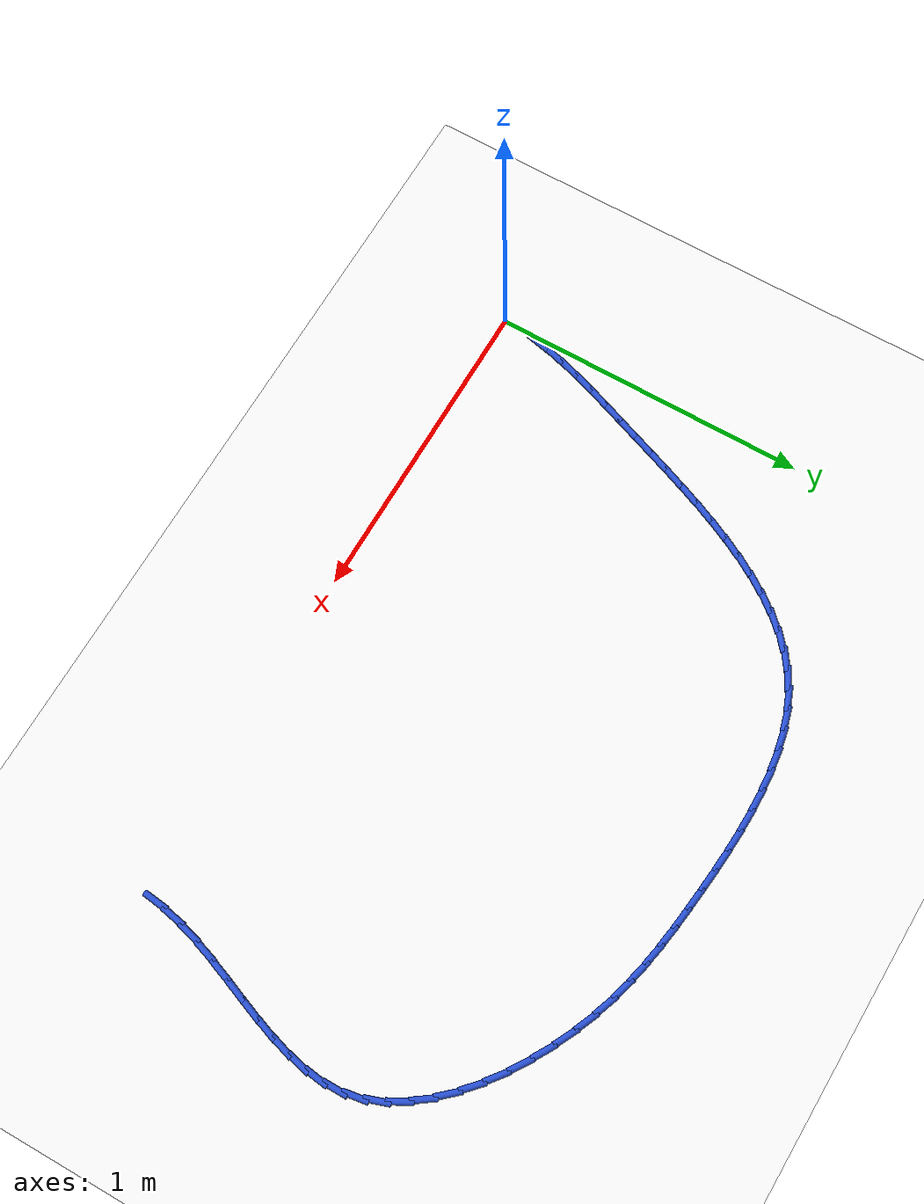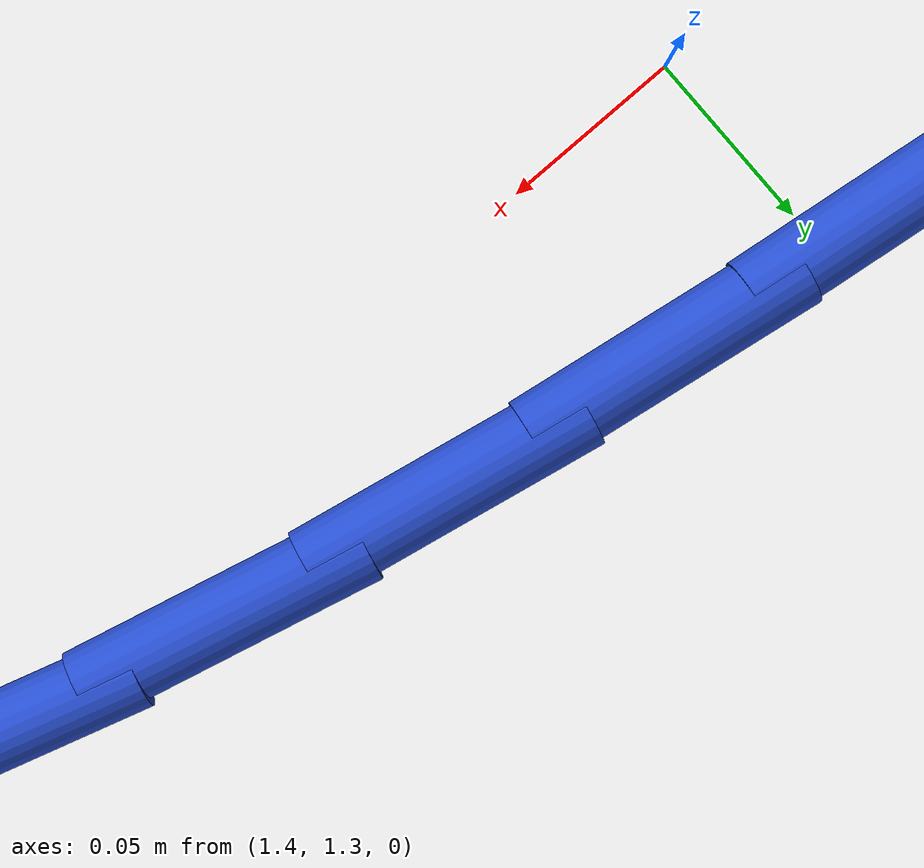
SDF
<sdf version="1.6">
 <world name="default">
  <model name="ground_plane">
   <static>1</static>
   <link name="link">
    <collision name="collision">
     <geometry><plane><normal>0 0 1</normal><size>100 100</size></plane></geometry>
     <surface><friction><ode><mu>100</mu><mu2>50</mu2></ode></friction></surface>
    </collision>
    <visual name="visual">
     <cast_shadows>0</cast_shadows>
     <geometry><plane><normal>0 0 1</normal><size>100 100</size></plane></geometry>
     <material>
      <script><uri>file://media/materials/scripts/gazebo.material</uri><name>Gazebo/WhiteGlow</name></script>
     </material>
    </visual>
   </link>
  </model>
  <model name="line">
   <link name="link_2">
    <pose>0.015124874615963263 0.12726597882911098 0.01 0 1.57 1.35212334152487</pose>
    <collision name="collision">
     <geometry><cylinder><radius>0.01</radius><length>0.08</length></cylinder></geometry>
    </collision>
    <visual name="visual">
     <material>
      <script><name>Gazebo/Blue</name><uri>file://media/materials/scripts/gazebo.material</uri></script>
     </material>
     <geometry><cylinder><radius>0.01</radius><length>0.08</length></cylinder></geometry>
    </visual>
   </link>
   <link name="link_3">
    <pose>0.02903649957802041 0.18986709704560153 0.01 0 1.57 1.3005191674126104</pose>
    <collision name="collision">
     <geometry><cylinder><radius>0.01</radius><length>0.08</length></cylinder></geometry>
    </collision>
    <visual name="visual">
     <material>
      <script><name>Gazebo/Blue</name><uri>file://media/materials/scripts/gazebo.material</uri></script>
     </material>
     <geometry><cylinder><radius>0.01</radius><length>0.08</length></cylinder></geometry>
    </visual>
   </link>
   <link name="link_4">
    <pose>0.04630110535305895 0.25218147275613845 0.01 0 1.57 1.2609099498490404</pose>
    <collision name="collision">
     <geometry><cylinder><radius>0.01</radius><length>0.08</length></cylinder></geometry>
    </collision>
    <visual name="visual">
     <material>
      <script><name>Gazebo/Blue</name><uri>file://media/materials/scripts/gazebo.material</uri></script>
     </material>
     <geometry><cylinder><radius>0.01</radius><length>0.08</length></cylinder></geometry>
    </visual>
   </link>
   <link name="link_5">
    <pose>0.06625883372377724 0.31450998468028923 0.01 0 1.57 1.2331866484383454</pose>
    <collision name="collision">
     <geometry><cylinder><radius>0.01</radius><length>0.08</length></cylinder></geometry>
    </collision>
    <visual name="visual">
     <material>
      <script><name>Gazebo/Blue</name><uri>file://media/materials/scripts/gazebo.material</uri></script>
     </material>
     <geometry><cylinder><radius>0.01</radius><length>0.08</length></cylinder></geometry>
    </visual>
   </link>
   <link name="link_6">
    <pose>0.08824982647287352 0.3771535115376211 0.01 0 1.57 1.2169947695209347</pose>
    <collision name="collision">
     <geometry><cylinder><radius>0.01</radius><length>0.08</length></cylinder></geometry>
    </collision>
    <visual name="visual">
     <material>
      <script><name>Gazebo/Blue</name><uri>file://media/materials/scripts/gazebo.material</uri></script>
     </material>
     <geometry><cylinder><radius>0.01</radius><length>0.08</length></cylinder></geometry>
    </visual>
   </link>
   <link name="link_7">
    <pose>0.1116142253830461 0.4404129320477016 0.01 0 1.57 1.2118624495936923</pose>
    <collision name="collision">
     <geometry><cylinder><radius>0.01</radius><length>0.08</length></cylinder></geometry>
    </collision>
    <visual name="visual">
     <material>
      <script><name>Gazebo/Blue</name><uri>file://media/materials/scripts/gazebo.material</uri></script>
     </material>
     <geometry><cylinder><radius>0.01</radius><length>0.08</length></cylinder></geometry>
    </visual>
   </link>
   <link name="link_8">
    <pose>0.1356922273314068 0.5045890769019296 0.01 0 1.57 1.21390317067661</pose>
    <collision name="collision">
     <geometry><cylinder><radius>0.01</radius><length>0.08</length></cylinder></geometry>
    </collision>
    <visual name="visual">
     <material>
      <script><name>Gazebo/Blue</name><uri>file://media/materials/scripts/gazebo.material</uri></script>
     </material>
     <geometry><cylinder><radius>0.01</radius><length>0.08</length></cylinder></geometry>
    </visual>
   </link>
   <link name="link_9">
    <pose>0.16001337527706083 0.569817715673678 0.01 0 1.57 1.2120164388921044</pose>
    <collision name="collision">
     <geometry><cylinder><radius>0.01</radius><length>0.08</length></cylinder></geometry>
    </collision>
    <visual name="visual">
     <material>
      <script><name>Gazebo/Blue</name><uri>file://media/materials/scripts/gazebo.material</uri></script>
     </material>
     <geometry><cylinder><radius>0.01</radius><length>0.08</length></cylinder></geometry>
    </visual>
   </link>
   <link name="link_10">
    <pose>0.1847200631193839 0.6357003694305189 0.01 0 1.57 1.2041223423482854</pose>
    <collision name="collision">
     <geometry><cylinder><radius>0.01</radius><length>0.08</length></cylinder></geometry>
    </collision>
    <visual name="visual">
     <material>
      <script><name>Gazebo/Blue</name><uri>file://media/materials/scripts/gazebo.material</uri></script>
     </material>
     <geometry><cylinder><radius>0.01</radius><length>0.08</length></cylinder></geometry>
    </visual>
   </link>
   <link name="link_11">
    <pose>0.2100784510165505 0.701730666872587 0.01 0 1.57 1.190189923793498</pose>
    <collision name="collision">
     <geometry><cylinder><radius>0.01</radius><length>0.08</length></cylinder></geometry>
    </collision>
    <visual name="visual">
     <material>
      <script><name>Gazebo/Blue</name><uri>file://media/materials/scripts/gazebo.material</uri></script>
     </material>
     <geometry><cylinder><radius>0.01</radius><length>0.08</length></cylinder></geometry>
    </visual>
   </link>
   <link name="link_12">
    <pose>0.2363546991267352 0.767402236700017 0.01 0 1.57 1.1700041935867342</pose>
    <collision name="collision">
     <geometry><cylinder><radius>0.01</radius><length>0.08</length></cylinder></geometry>
    </collision>
    <visual name="visual">
     <material>
      <script><name>Gazebo/Blue</name><uri>file://media/materials/scripts/gazebo.material</uri></script>
     </material>
     <geometry><cylinder><radius>0.01</radius><length>0.08</length></cylinder></geometry>
    </visual>
   </link>
   <link name="link_13">
    <pose>0.2638149676081124 0.8322087076129432 0.01 0 1.57 1.1431716851455187</pose>
    <collision name="collision">
     <geometry><cylinder><radius>0.01</radius><length>0.08</length></cylinder></geometry>
    </collision>
    <visual name="visual">
     <material>
      <script><name>Gazebo/Blue</name><uri>file://media/materials/scripts/gazebo.material</uri></script>
     </material>
     <geometry><cylinder><radius>0.01</radius><length>0.08</length></cylinder></geometry>
    </visual>
   </link>
   <link name="link_14">
    <pose>0.29272541661885665 0.8956437083115005 0.01 0 1.57 1.109123332111662</pose>
    <collision name="collision">
     <geometry><cylinder><radius>0.01</radius><length>0.08</length></cylinder></geometry>
    </collision>
    <visual name="visual">
     <material>
      <script><name>Gazebo/Blue</name><uri>file://media/materials/scripts/gazebo.material</uri></script>
     </material>
     <geometry><cylinder><radius>0.01</radius><length>0.08</length></cylinder></geometry>
    </visual>
   </link>
   <link name="link_15">
    <pose>0.32335220631714245 0.9572008674958233 0.01 0 1.57 1.0671209067730352</pose>
    <collision name="collision">
     <geometry><cylinder><radius>0.01</radius><length>0.08</length></cylinder></geometry>
    </collision>
    <visual name="visual">
     <material>
      <script><name>Gazebo/Blue</name><uri>file://media/materials/scripts/gazebo.material</uri></script>
     </material>
     <geometry><cylinder><radius>0.01</radius><length>0.08</length></cylinder></geometry>
    </visual>
   </link>
   <link name="link_16">
    <pose>0.35596149686114437 1.0163738138660467 0.01 0 1.57 1.0162770534701207</pose>
    <collision name="collision">
     <geometry><cylinder><radius>0.01</radius><length>0.08</length></cylinder></geometry>
    </collision>
    <visual name="visual">
     <material>
      <script><name>Gazebo/Blue</name><uri>file://media/materials/scripts/gazebo.material</uri></script>
     </material>
     <geometry><cylinder><radius>0.01</radius><length>0.08</length></cylinder></geometry>
    </visual>
   </link>
   <link name="link_17">
    <pose>0.39081944840903693 1.072656176122305 0.01 0 1.57 0.9556048104349663</pose>
    <collision name="collision">
     <geometry><cylinder><radius>0.01</radius><length>0.08</length></cylinder></geometry>
    </collision>
    <visual name="visual">
     <material>
      <script><name>Gazebo/Blue</name><uri>file://media/materials/scripts/gazebo.material</uri></script>
     </material>
     <geometry><cylinder><radius>0.01</radius><length>0.08</length></cylinder></geometry>
    </visual>
   </link>
   <link name="link_18">
    <pose>0.4281922211189946 1.125541582964733 0.01 0 1.57 0.8841197090836979</pose>
    <collision name="collision">
     <geometry><cylinder><radius>0.01</radius><length>0.08</length></cylinder></geometry>
    </collision>
    <visual name="visual">
     <material>
      <script><name>Gazebo/Blue</name><uri>file://media/materials/scripts/gazebo.material</uri></script>
     </material>
     <geometry><cylinder><radius>0.01</radius><length>0.08</length></cylinder></geometry>
    </visual>
   </link>
   <link name="link_19">
    <pose>0.46834597514919174 1.174523663093465 0.01 0 1.57 0.8010222239705981</pose>
    <collision name="collision">
     <geometry><cylinder><radius>0.01</radius><length>0.08</length></cylinder></geometry>
    </collision>
    <visual name="visual">
     <material>
      <script><name>Gazebo/Blue</name><uri>file://media/materials/scripts/gazebo.material</uri></script>
     </material>
     <geometry><cylinder><radius>0.01</radius><length>0.08</length></cylinder></geometry>
    </visual>
   </link>
   <link name="link_20">
    <pose>0.5115468706578031 1.2190960452086357 0.01 0 1.57 0.705980502461351</pose>
    <collision name="collision">
     <geometry><cylinder><radius>0.01</radius><length>0.08</length></cylinder></geometry>
    </collision>
    <visual name="visual">
     <material>
      <script><name>Gazebo/Blue</name><uri>file://media/materials/scripts/gazebo.material</uri></script>
     </material>
     <geometry><cylinder><radius>0.01</radius><length>0.08</length></cylinder></geometry>
    </visual>
   </link>
   <link name="link_21">
    <pose>0.5580610678030031 1.2587523580103803 0.01 0 1.57 0.5994961014630537</pose>
    <collision name="collision">
     <geometry><cylinder><radius>0.01</radius><length>0.08</length></cylinder></geometry>
    </collision>
    <visual name="visual">
     <material>
      <script><name>Gazebo/Blue</name><uri>file://media/materials/scripts/gazebo.material</uri></script>
     </material>
     <geometry><cylinder><radius>0.01</radius><length>0.08</length></cylinder></geometry>
    </visual>
   </link>
   <link name="link_22">
    <pose>0.6081547267429666 1.2929862301988333 0.01 0 1.57 0.48387752067793427</pose>
    <collision name="collision">
     <geometry><cylinder><radius>0.01</radius><length>0.08</length></cylinder></geometry>
    </collision>
    <visual name="visual">
     <material>
      <script><name>Gazebo/Blue</name><uri>file://media/materials/scripts/gazebo.material</uri></script>
     </material>
     <geometry><cylinder><radius>0.01</radius><length>0.08</length></cylinder></geometry>
    </visual>
   </link>
   <link name="link_23">
    <pose>0.6620708887715643 1.3213218316882342 0.01 0 1.57 0.37247261003637067</pose>
    <collision name="collision">
     <geometry><cylinder><radius>0.01</radius><length>0.08</length></cylinder></geometry>
    </collision>
    <visual name="visual">
     <material>
      <script><name>Gazebo/Blue</name><uri>file://media/materials/scripts/gazebo.material</uri></script>
     </material>
     <geometry><cylinder><radius>0.01</radius><length>0.08</length></cylinder></geometry>
    </visual>
   </link>
   <link name="link_24">
    <pose>0.7196480063954006 1.343817815082576 0.01 0 1.57 0.27552806119594847</pose>
    <collision name="collision">
     <geometry><cylinder><radius>0.01</radius><length>0.08</length></cylinder></geometry>
    </collision>
    <visual name="visual">
     <material>
      <script><name>Gazebo/Blue</name><uri>file://media/materials/scripts/gazebo.material</uri></script>
     </material>
     <geometry><cylinder><radius>0.01</radius><length>0.08</length></cylinder></geometry>
    </visual>
   </link>
   <link name="link_25">
    <pose>0.7803800538202094 1.3609879066176538 0.01 0 1.57 0.19281610082005254</pose>
    <collision name="collision">
     <geometry><cylinder><radius>0.01</radius><length>0.08</length></cylinder></geometry>
    </collision>
    <visual name="visual">
     <material>
      <script><name>Gazebo/Blue</name><uri>file://media/materials/scripts/gazebo.material</uri></script>
     </material>
     <geometry><cylinder><radius>0.01</radius><length>0.08</length></cylinder></geometry>
    </visual>
   </link>
   <link name="link_26">
    <pose>0.8437500060622933 1.37336036302674 0.01 0 1.57 0.12310279461666554</pose>
    <collision name="collision">
     <geometry><cylinder><radius>0.01</radius><length>0.08</length></cylinder></geometry>
    </collision>
    <visual name="visual">
     <material>
      <script><name>Gazebo/Blue</name><uri>file://media/materials/scripts/gazebo.material</uri></script>
     </material>
     <geometry><cylinder><radius>0.01</radius><length>0.08</length></cylinder></geometry>
    </visual>
   </link>
   <link name="link_27">
    <pose>0.909240838137956 1.3814634410431093 0.01 0 1.57 0.06492058829855396</pose>
    <collision name="collision">
     <geometry><cylinder><radius>0.01</radius><length>0.08</length></cylinder></geometry>
    </collision>
    <visual name="visual">
     <material>
      <script><name>Gazebo/Blue</name><uri>file://media/materials/scripts/gazebo.material</uri></script>
     </material>
     <geometry><cylinder><radius>0.01</radius><length>0.08</length></cylinder></geometry>
    </visual>
   </link>
   <link name="link_28">
    <pose>0.9763355250634989 1.3858253974000327 0.01 0 1.57 0.016851820086909206</pose>
    <collision name="collision">
     <geometry><cylinder><radius>0.01</radius><length>0.08</length></cylinder></geometry>
    </collision>
    <visual name="visual">
     <material>
      <script><name>Gazebo/Blue</name><uri>file://media/materials/scripts/gazebo.material</uri></script>
     </material>
     <geometry><cylinder><radius>0.01</radius><length>0.08</length></cylinder></geometry>
    </visual>
   </link>
   <link name="link_29">
    <pose>1.0445170418552256 1.3869744888307847 0.01 0 1.57 -0.022330647379553443</pose>
    <collision name="collision">
     <geometry><cylinder><radius>0.01</radius><length>0.08</length></cylinder></geometry>
    </collision>
    <visual name="visual">
     <material>
      <script><name>Gazebo/Blue</name><uri>file://media/materials/scripts/gazebo.material</uri></script>
     </material>
     <geometry><cylinder><radius>0.01</radius><length>0.08</length></cylinder></geometry>
    </visual>
   </link>
   <link name="link_30">
    <pose>1.1132683635294387 1.3854389720686378 0.01 0 1.57 -0.05360626914363247</pose>
    <collision name="collision">
     <geometry><cylinder><radius>0.01</radius><length>0.08</length></cylinder></geometry>
    </collision>
    <visual name="visual">
     <material>
      <script><name>Gazebo/Blue</name><uri>file://media/materials/scripts/gazebo.material</uri></script>
     </material>
     <geometry><cylinder><radius>0.01</radius><length>0.08</length></cylinder></geometry>
    </visual>
   </link>
   <link name="link_31">
    <pose>1.182072465102441 1.381747103846865 0.01 0 1.57 -0.07768900738043621</pose>
    <collision name="collision">
     <geometry><cylinder><radius>0.01</radius><length>0.08</length></cylinder></geometry>
    </collision>
    <visual name="visual">
     <material>
      <script><name>Gazebo/Blue</name><uri>file://media/materials/scripts/gazebo.material</uri></script>
     </material>
     <geometry><cylinder><radius>0.01</radius><length>0.08</length></cylinder></geometry>
    </visual>
   </link>
   <link name="link_32">
    <pose>1.2504123215905356 1.376427140898739 0.01 0 1.57 -0.09502081731744637</pose>
    <collision name="collision">
     <geometry><cylinder><radius>0.01</radius><length>0.08</length></cylinder></geometry>
    </collision>
    <visual name="visual">
     <material>
      <script><name>Gazebo/Blue</name><uri>file://media/materials/scripts/gazebo.material</uri></script>
     </material>
     <geometry><cylinder><radius>0.01</radius><length>0.08</length></cylinder></geometry>
    </visual>
   </link>
   <link name="link_33">
    <pose>1.3177709080100246 1.3700073399575332 0.01 0 1.57 -0.10704919971978034</pose>
    <collision name="collision">
     <geometry><cylinder><radius>0.01</radius><length>0.08</length></cylinder></geometry>
    </collision>
    <visual name="visual">
     <material>
      <script><name>Gazebo/Blue</name><uri>file://media/materials/scripts/gazebo.material</uri></script>
     </material>
     <geometry><cylinder><radius>0.01</radius><length>0.08</length></cylinder></geometry>
    </visual>
   </link>
   <link name="link_34">
    <pose>1.3837030098768872 1.3629222766838744 0.01 0 1.57 -0.12422450781899312</pose>
    <collision name="collision">
     <geometry><cylinder><radius>0.01</radius><length>0.08</length></cylinder></geometry>
    </collision>
    <visual name="visual">
     <material>
      <script><name>Gazebo/Blue</name><uri>file://media/materials/scripts/gazebo.material</uri></script>
     </material>
     <geometry><cylinder><radius>0.01</radius><length>0.08</length></cylinder></geometry>
    </visual>
   </link>
   <link name="link_35">
    <pose>1.4483426409005362 1.3548508890710231 0.01 0 1.57 -0.15164577110909783</pose>
    <collision name="collision">
     <geometry><cylinder><radius>0.01</radius><length>0.08</length></cylinder></geometry>
    </collision>
    <visual name="visual">
     <material>
      <script><name>Gazebo/Blue</name><uri>file://media/materials/scripts/gazebo.material</uri></script>
     </material>
     <geometry><cylinder><radius>0.01</radius><length>0.08</length></cylinder></geometry>
    </visual>
   </link>
   <link name="link_36">
    <pose>1.5121037004652866 1.345106987584076 0.01 0 1.57 -0.18895584179381783</pose>
    <collision name="collision">
     <geometry><cylinder><radius>0.01</radius><length>0.08</length></cylinder></geometry>
    </collision>
    <visual name="visual">
     <material>
      <script><name>Gazebo/Blue</name><uri>file://media/materials/scripts/gazebo.material</uri></script>
     </material>
     <geometry><cylinder><radius>0.01</radius><length>0.08</length></cylinder></geometry>
    </visual>
   </link>
   <link name="link_37">
    <pose>1.5754019057919997 1.3330020112121135 0.01 0 1.57 -0.2351615926998994</pose>
    <collision name="collision">
     <geometry><cylinder><radius>0.01</radius><length>0.08</length></cylinder></geometry>
    </collision>
    <visual name="visual">
     <material>
      <script><name>Gazebo/Blue</name><uri>file://media/materials/scripts/gazebo.material</uri></script>
     </material>
     <geometry><cylinder><radius>0.01</radius><length>0.08</length></cylinder></geometry>
    </visual>
   </link>
   <link name="link_38">
    <pose>1.638652974101537 1.3178473989442174 0.01 0 1.57 -0.28867007387549803</pose>
    <collision name="collision">
     <geometry><cylinder><radius>0.01</radius><length>0.08</length></cylinder></geometry>
    </collision>
    <visual name="visual">
     <material>
      <script><name>Gazebo/Blue</name><uri>file://media/materials/scripts/gazebo.material</uri></script>
     </material>
     <geometry><cylinder><radius>0.01</radius><length>0.08</length></cylinder></geometry>
    </visual>
   </link>
   <link name="link_39">
    <pose>1.7022726226147609 1.2989545897694685 0.01 0 1.57 -0.3472871755971398</pose>
    <collision name="collision">
     <geometry><cylinder><radius>0.01</radius><length>0.08</length></cylinder></geometry>
    </collision>
    <visual name="visual">
     <material>
      <script><name>Gazebo/Blue</name><uri>file://media/materials/scripts/gazebo.material</uri></script>
     </material>
     <geometry><cylinder><radius>0.01</radius><length>0.08</length></cylinder></geometry>
    </visual>
   </link>
   <link name="link_40">
    <pose>1.7666480872740946 1.2756534247872477 0.01 0 1.57 -0.40678809800112514</pose>
    <collision name="collision">
     <geometry><cylinder><radius>0.01</radius><length>0.08</length></cylinder></geometry>
    </collision>
    <visual name="visual">
     <material>
      <script><name>Gazebo/Blue</name><uri>file://media/materials/scripts/gazebo.material</uri></script>
     </material>
     <geometry><cylinder><radius>0.01</radius><length>0.08</length></cylinder></geometry>
    </visual>
   </link>
   <link name="link_41">
    <pose>1.8314553377972054 1.2477333031027271 0.01 0 1.57 -0.4659323039570916</pose>
    <collision name="collision">
     <geometry><cylinder><radius>0.01</radius><length>0.08</length></cylinder></geometry>
    </collision>
    <visual name="visual">
     <material>
      <script><name>Gazebo/Blue</name><uri>file://media/materials/scripts/gazebo.material</uri></script>
     </material>
     <geometry><cylinder><radius>0.01</radius><length>0.08</length></cylinder></geometry>
    </visual>
   </link>
   <link name="link_42">
    <pose>1.8956263812882685 1.215464307372663 0.01 0 1.57 -0.5269574659602752</pose>
    <collision name="collision">
     <geometry><cylinder><radius>0.01</radius><length>0.08</length></cylinder></geometry>
    </collision>
    <visual name="visual">
     <material>
      <script><name>Gazebo/Blue</name><uri>file://media/materials/scripts/gazebo.material</uri></script>
     </material>
     <geometry><cylinder><radius>0.01</radius><length>0.08</length></cylinder></geometry>
    </visual>
   </link>
   <link name="link_43">
    <pose>1.9580582001541973 1.1791391501488717 0.01 0 1.57 -0.5921990733330313</pose>
    <collision name="collision">
     <geometry><cylinder><radius>0.01</radius><length>0.08</length></cylinder></geometry>
    </collision>
    <visual name="visual">
     <material>
      <script><name>Gazebo/Blue</name><uri>file://media/materials/scripts/gazebo.material</uri></script>
     </material>
     <geometry><cylinder><radius>0.01</radius><length>0.08</length></cylinder></geometry>
    </visual>
   </link>
   <link name="link_44">
    <pose>2.017647776801906 1.1390505439831706 0.01 0 1.57 -0.6641756154894676</pose>
    <collision name="collision">
     <geometry><cylinder><radius>0.01</radius><length>0.08</length></cylinder></geometry>
    </collision>
    <visual name="visual">
     <material>
      <script><name>Gazebo/Blue</name><uri>file://media/materials/scripts/gazebo.material</uri></script>
     </material>
     <geometry><cylinder><radius>0.01</radius><length>0.08</length></cylinder></geometry>
    </visual>
   </link>
   <link name="link_45">
    <pose>2.0732920936383086 1.0954912014273774 0.01 0 1.57 -0.7457750408724259</pose>
    <collision name="collision">
     <geometry><cylinder><radius>0.01</radius><length>0.08</length></cylinder></geometry>
    </collision>
    <visual name="visual">
     <material>
      <script><name>Gazebo/Blue</name><uri>file://media/materials/scripts/gazebo.material</uri></script>
     </material>
     <geometry><cylinder><radius>0.01</radius><length>0.08</length></cylinder></geometry>
    </visual>
   </link>
   <link name="link_46">
    <pose>2.123888133070318 1.0487538350333088 0.01 0 1.57 -0.8403875848444728</pose>
    <collision name="collision">
     <geometry><cylinder><radius>0.01</radius><length>0.08</length></cylinder></geometry>
    </collision>
    <visual name="visual">
     <material>
      <script><name>Gazebo/Blue</name><uri>file://media/materials/scripts/gazebo.material</uri></script>
     </material>
     <geometry><cylinder><radius>0.01</radius><length>0.08</length></cylinder></geometry>
    </visual>
   </link>
   <link name="link_47">
    <pose>2.1683328775048487 0.9991311573527816 0.01 0 1.57 -0.9518948260493431</pose>
    <collision name="collision">
     <geometry><cylinder><radius>0.01</radius><length>0.08</length></cylinder></geometry>
    </collision>
    <visual name="visual">
     <material>
      <script><name>Gazebo/Blue</name><uri>file://media/materials/scripts/gazebo.material</uri></script>
     </material>
     <geometry><cylinder><radius>0.01</radius><length>0.08</length></cylinder></geometry>
    </visual>
   </link>
   <link name="link_48">
    <pose>2.205523309348814 0.9469158809376136 0.01 0 1.57 -1.0842964482931572</pose>
    <collision name="collision">
     <geometry><cylinder><radius>0.01</radius><length>0.08</length></cylinder></geometry>
    </collision>
    <visual name="visual">
     <material>
      <script><name>Gazebo/Blue</name><uri>file://media/materials/scripts/gazebo.material</uri></script>
     </material>
     <geometry><cylinder><radius>0.01</radius><length>0.08</length></cylinder></geometry>
    </visual>
   </link>
   <link name="link_49">
    <pose>2.234356411009128 0.8924007183396221 0.01 0 1.57 -1.2405992313072076</pose>
    <collision name="collision">
     <geometry><cylinder><radius>0.01</radius><length>0.08</length></cylinder></geometry>
    </collision>
    <visual name="visual">
     <material>
      <script><name>Gazebo/Blue</name><uri>file://media/materials/scripts/gazebo.material</uri></script>
     </material>
     <geometry><cylinder><radius>0.01</radius><length>0.08</length></cylinder></geometry>
    </visual>
   </link>
   <link name="link_50">
    <pose>2.2537291648927043 0.8358783821106235 0.01 0 1.57 -1.4166203122000576</pose>
    <collision name="collision">
     <geometry><cylinder><radius>0.01</radius><length>0.08</length></cylinder></geometry>
    </collision>
    <visual name="visual">
     <material>
      <script><name>Gazebo/Blue</name><uri>file://media/materials/scripts/gazebo.material</uri></script>
     </material>
     <geometry><cylinder><radius>0.01</radius><length>0.08</length></cylinder></geometry>
    </visual>
   </link>
   <link name="link_51">
    <pose>2.262781372481759 0.7776308699958642 0.01 0 1.57 1.5631838817920103</pose>
    <collision name="collision">
     <geometry><cylinder><radius>0.01</radius><length>0.08</length></cylinder></geometry>
    </collision>
    <visual name="visual">
     <material>
      <script><name>Gazebo/Blue</name><uri>file://media/materials/scripts/gazebo.material</uri></script>
     </material>
     <geometry><cylinder><radius>0.01</radius><length>0.08</length></cylinder></geometry>
    </visual>
   </link>
   <link name="link_52">
    <pose>2.2623264094228235 0.7178663304211623 0.01 0 1.57 1.4334842612171577</pose>
    <collision name="collision">
     <geometry><cylinder><radius>0.01</radius><length>0.08</length></cylinder></geometry>
    </collision>
    <visual name="visual">
     <material>
      <script><name>Gazebo/Blue</name><uri>file://media/materials/scripts/gazebo.material</uri></script>
     </material>
     <geometry><cylinder><radius>0.01</radius><length>0.08</length></cylinder></geometry>
    </visual>
   </link>
   <link name="link_53">
    <pose>2.2538828858022604 0.6567617921377372 0.01 0 1.57 1.3357559279512687</pose>
    <collision name="collision">
     <geometry><cylinder><radius>0.01</radius><length>0.08</length></cylinder></geometry>
    </collision>
    <visual name="visual">
     <material>
      <script><name>Gazebo/Blue</name><uri>file://media/materials/scripts/gazebo.material</uri></script>
     </material>
     <geometry><cylinder><radius>0.01</radius><length>0.08</length></cylinder></geometry>
    </visual>
   </link>
   <link name="link_54">
    <pose>2.2389718824891567 0.5944941748692953 0.01 0 1.57 1.2666071401948156</pose>
    <collision name="collision">
     <geometry><cylinder><radius>0.01</radius><length>0.08</length></cylinder></geometry>
    </collision>
    <visual name="visual">
     <material>
      <script><name>Gazebo/Blue</name><uri>file://media/materials/scripts/gazebo.material</uri></script>
     </material>
     <geometry><cylinder><radius>0.01</radius><length>0.08</length></cylinder></geometry>
    </visual>
   </link>
   <link name="link_55">
    <pose>2.2191144803526024 0.5312403983395458 0.01 0 1.57 1.2222034868882166</pose>
    <collision name="collision">
     <geometry><cylinder><radius>0.01</radius><length>0.08</length></cylinder></geometry>
    </collision>
    <visual name="visual">
     <material>
      <script><name>Gazebo/Blue</name><uri>file://media/materials/scripts/gazebo.material</uri></script>
     </material>
     <geometry><cylinder><radius>0.01</radius><length>0.08</length></cylinder></geometry>
    </visual>
   </link>
   <link name="link_56">
    <pose>2.195831760261684 0.4671773822721956 0.01 0 1.57 1.1995337157931414</pose>
    <collision name="collision">
     <geometry><cylinder><radius>0.01</radius><length>0.08</length></cylinder></geometry>
    </collision>
    <visual name="visual">
     <material>
      <script><name>Gazebo/Blue</name><uri>file://media/materials/scripts/gazebo.material</uri></script>
     </material>
     <geometry><cylinder><radius>0.01</radius><length>0.08</length></cylinder></geometry>
    </visual>
   </link>
   <link name="link_57">
    <pose>2.1706448030854903 0.4024820463909539 0.01 0 1.57 1.1967927622535937</pose>
    <collision name="collision">
     <geometry><cylinder><radius>0.01</radius><length>0.08</length></cylinder></geometry>
    </collision>
    <visual name="visual">
     <material>
      <script><name>Gazebo/Blue</name><uri>file://media/materials/scripts/gazebo.material</uri></script>
     </material>
     <geometry><cylinder><radius>0.01</radius><length>0.08</length></cylinder></geometry>
    </visual>
   </link>
   <link name="link_58">
    <pose>2.1450746896931108 0.3373313104195278 0.01 0 1.57 1.2134168018485108</pose>
    <collision name="collision">
     <geometry><cylinder><radius>0.01</radius><length>0.08</length></cylinder></geometry>
    </collision>
    <visual name="visual">
     <material>
      <script><name>Gazebo/Blue</name><uri>file://media/materials/scripts/gazebo.material</uri></script>
     </material>
     <geometry><cylinder><radius>0.01</radius><length>0.08</length></cylinder></geometry>
    </visual>
   </link>
   <link name="link_59">
    <pose>2.120642500953633 0.27190209408162636 0.01 0 1.57 1.2500130829332334</pose>
    <collision name="collision">
     <geometry><cylinder><radius>0.01</radius><length>0.08</length></cylinder></geometry>
    </collision>
    <visual name="visual">
     <material>
      <script><name>Gazebo/Blue</name><uri>file://media/materials/scripts/gazebo.material</uri></script>
     </material>
     <geometry><cylinder><radius>0.01</radius><length>0.08</length></cylinder></geometry>
    </visual>
   </link>
   <link name="link_60">
    <pose>2.098869317736144 0.20637131710095635 0.01 0 1.57 1.308216869990695</pose>
    <collision name="collision">
     <geometry><cylinder><radius>0.01</radius><length>0.08</length></cylinder></geometry>
    </collision>
    <visual name="visual">
     <material>
      <script><name>Gazebo/Blue</name><uri>file://media/materials/scripts/gazebo.material</uri></script>
     </material>
     <geometry><cylinder><radius>0.01</radius><length>0.08</length></cylinder></geometry>
    </visual>
   </link>
   <link name="link_61">
    <pose>2.0812758446159636 0.1409158633577414 0.01 0 1.57 1.3828901806057854</pose>
    <collision name="collision">
     <geometry><cylinder><radius>0.01</radius><length>0.08</length></cylinder></geometry>
    </collision>
    <visual name="visual">
     <material>
      <script><name>Gazebo/Blue</name><uri>file://media/materials/scripts/gazebo.material</uri></script>
     </material>
     <geometry><cylinder><radius>0.01</radius><length>0.08</length></cylinder></geometry>
    </visual>
   </link>
   <link name="link_62">
    <pose>2.0688681647037876 0.07566359698079017 0.01 0 1.57 1.4522498424808767</pose>
    <collision name="collision">
     <geometry><cylinder><radius>0.01</radius><length>0.08</length></cylinder></geometry>
    </collision>
    <visual name="visual">
     <material>
      <script><name>Gazebo/Blue</name><uri>file://media/materials/scripts/gazebo.material</uri></script>
     </material>
     <geometry><cylinder><radius>0.01</radius><length>0.08</length></cylinder></geometry>
    </visual>
   </link>
  </model>
 </world>
</sdf>
